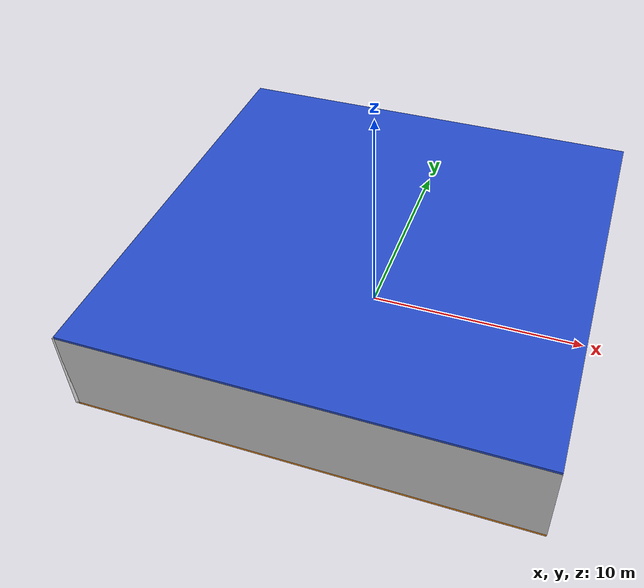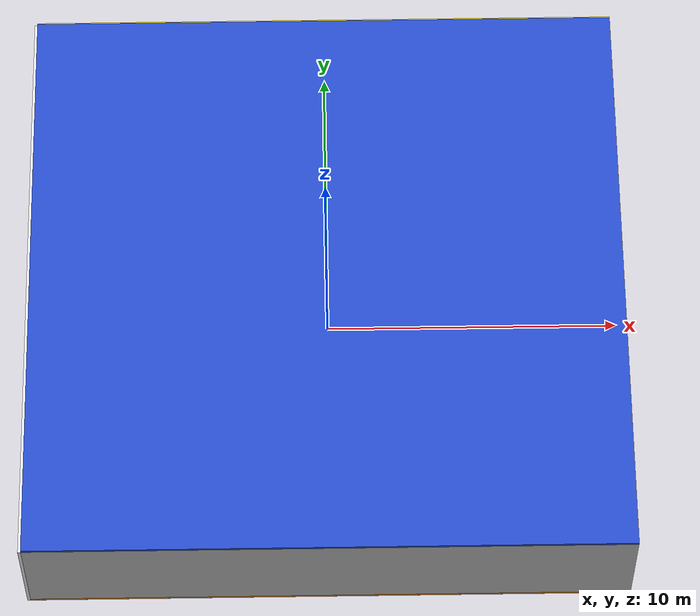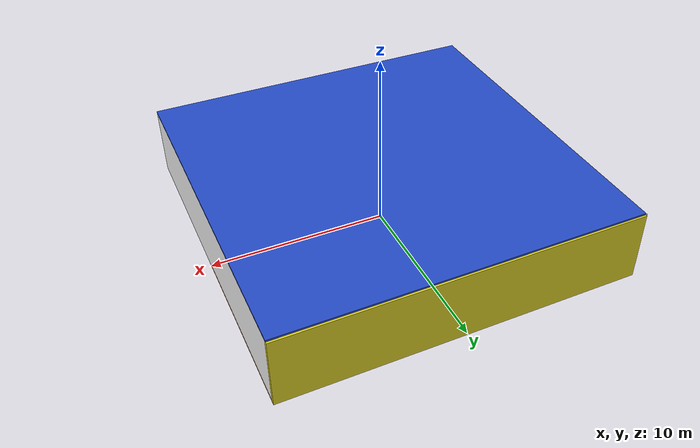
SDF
<sdf version="1.4">
 <world name="default">
  <physics type="ode">
   <max_step_size>0.001</max_step_size>
   <real_time_factor>1</real_time_factor>
   <real_time_update_rate>1000</real_time_update_rate>
   <gravity>0 0 -9.8</gravity>
  </physics>
  <scene><ambient>0.4 0.4 0.4 1</ambient><background>0.7 0.7 0.7 1</background><shadows>1</shadows></scene>
  <model name="Surrounding">
   <static>1</static>
   <link name="Ceiling">
    <collision name="Ceiling_Collision"><geometry><box><size>20 20 0.1</size></box></geometry></collision>
    <visual name="Ceiling_Visual">
     <geometry><box><size>20 20 0.1</size></box></geometry>
     <material>
      <script><uri>file://media/materials/scripts/gazebo.material</uri><name>Gazebo/BlueLaser</name></script>
     </material>
    </visual>
    <pose>0 0 4.05 0 0 0</pose>
   </link>
   <link name="Wall_South">
    <collision name="Wall_South_Collision">
     <geometry><box><size>20 0 4</size></box></geometry>
     <pose>0 0 2 0 -0 0</pose>
    </collision>
    <visual name="Wall_South_Visual">
     <pose>0 0 2 0 -0 0</pose>
     <geometry><box><size>20 0 4</size></box></geometry>
     <material>
      <script><uri>file://media/materials/scripts/gazebo.material</uri><name>Gazebo/CloudySky</name></script>
     </material>
    </visual>
    <velocity_decay><linear>0</linear><angular>0</angular></velocity_decay>
    <pose>0 -10 0 0 -0 0</pose>
   </link>
   <link name="Wall_East">
    <collision name="Wall_21_Collision">
     <geometry><box><size>20 0 4</size></box></geometry>
     <pose>0 0 2 0 -0 0</pose>
    </collision>
    <visual name="Wall_21_Visual">
     <pose>0 0 2 0 -0 0</pose>
     <geometry><box><size>20 0 4</size></box></geometry>
     <material>
      <script><uri>file://media/materials/scripts/gazebo.material</uri><name>Gazebo/WhiteGlow</name></script>
     </material>
    </visual>
    <velocity_decay><linear>0</linear><angular>0</angular></velocity_decay>
    <pose>10 0 0 0 -0 1.5708</pose>
   </link>
   <link name="Wall_North">
    <collision name="Wall_22_Collision">
     <geometry><box><size>20 0.2 4</size></box></geometry>
     <pose>0 0 2 0 -0 0</pose>
    </collision>
    <visual name="Wall_22_Visual">
     <pose>0 0 2 0 -0 0</pose>
     <geometry><box><size>20 0.2 4</size></box></geometry>
     <material>
      <script><uri>file://media/materials/scripts/gazebo.material</uri><name>Gazebo/YellowGlow</name></script>
     </material>
    </visual>
    <velocity_decay><linear>0</linear><angular>0</angular></velocity_decay>
    <pose>0 10 0 0 -0 0</pose>
   </link>
   <link name="Wall_West">
    <collision name="Wall_23_Collision">
     <geometry><box><size>20 0.2 4</size></box></geometry>
     <pose>0 0 2 0 -0 0</pose>
    </collision>
    <visual name="Wall_23_Visual">
     <pose>0 0 2 0 -0 0</pose>
     <geometry><box><size>20 0.2 4</size></box></geometry>
     <material>
      <script><uri>file://media/materials/scripts/gazebo.material</uri><name>Gazebo/White</name></script>
     </material>
    </visual>
    <velocity_decay><linear>0</linear><angular>0</angular></velocity_decay>
    <pose>-10 0 0 0 0 -1.5708</pose>
   </link>
   <link name="Ground_link">
    <collision name="collision">
     <pose>0 0 .05 0 -0 0</pose>
     <geometry><box><size>20 20 0.1</size></box></geometry>
    </collision>
    <visual name="visual">
     <pose>0 0 .05 0 -0 0</pose>
     <geometry><box><size>20 20 0.1</size></box></geometry>
     <material>
      <script><uri>file://media/materials/scripts/gazebo.material</uri><name>Gazebo/Orange</name></script>
     </material>
    </visual>
   </link>
   <static>1</static>
  </model>
  <spherical_coordinates>
   <surface_model>EARTH_WGS84</surface_model>
   <latitude_deg>0</latitude_deg>
   <longitude_deg>0</longitude_deg>
   <elevation>0</elevation>
   <heading_deg>0</heading_deg>
  </spherical_coordinates>
  <light name="lightball_0" type="diffuse">
   <diffuse>0.8 0.8 0.8 1</diffuse>
   <specular>0.2 0.2 0.2 1</specular>
   <attenuation>
    <range>100</range>
    <constant>0.7</constant>
    <linear>0.01</linear>
    <quadratic>0.001</quadratic>
   </attenuation>
   <direction>-0.5 0.1 -0.9</direction>
   <pose>8.60667973334 -9.83219964867 2.77513320229 0 0 0</pose>
  </light>
  <light name="lightball_1" type="diffuse">
   <diffuse>0.8 0.8 0.8 1</diffuse>
   <specular>0.2 0.2 0.2 1</specular>
   <attenuation>
    <range>100</range>
    <constant>0.7</constant>
    <linear>0.01</linear>
    <quadratic>0.001</quadratic>
   </attenuation>
   <direction>-0.5 0.1 -0.9</direction>
   <pose>-2.08843189645 -7.38575573721 2.81557936299 0 0 0</pose>
  </light>
  <light name="lightball_2" type="diffuse">
   <diffuse>0.8 0.8 0.8 1</diffuse>
   <specular>0.2 0.2 0.2 1</specular>
   <attenuation>
    <range>100</range>
    <constant>0.7</constant>
    <linear>0.01</linear>
    <quadratic>0.001</quadratic>
   </attenuation>
   <direction>-0.5 0.1 -0.9</direction>
   <pose>-1.62922063332 -3.61081405487 3.80223401323 0 0 0</pose>
  </light>
  <light name="lightball_3" type="diffuse">
   <diffuse>0.8 0.8 0.8 1</diffuse>
   <specular>0.2 0.2 0.2 1</specular>
   <attenuation>
    <range>100</range>
    <constant>0.7</constant>
    <linear>0.01</linear>
    <quadratic>0.001</quadratic>
   </attenuation>
   <direction>-0.5 0.1 -0.9</direction>
   <pose>9.0954192262 -5.06497938393 2.71323853691 0 0 0</pose>
  </light>
  <light name="lightball_4" type="diffuse">
   <diffuse>0.8 0.8 0.8 1</diffuse>
   <specular>0.2 0.2 0.2 1</specular>
   <attenuation>
    <range>100</range>
    <constant>0.7</constant>
    <linear>0.01</linear>
    <quadratic>0.001</quadratic>
   </attenuation>
   <direction>-0.5 0.1 -0.9</direction>
   <pose>-5.79991670019 -0.305157193909 1.86395599038 0 0 0</pose>
  </light>
  <light name="lightball_5" type="diffuse">
   <diffuse>0.8 0.8 0.8 1</diffuse>
   <specular>0.2 0.2 0.2 1</specular>
   <attenuation>
    <range>100</range>
    <constant>0.7</constant>
    <linear>0.01</linear>
    <quadratic>0.001</quadratic>
   </attenuation>
   <direction>-0.5 0.1 -0.9</direction>
   <pose>-5.61005367703 2.03977288946 3.84477987155 0 0 0</pose>
  </light>
  <light name="lightball_6" type="diffuse">
   <diffuse>0.8 0.8 0.8 1</diffuse>
   <specular>0.2 0.2 0.2 1</specular>
   <attenuation>
    <range>100</range>
    <constant>0.7</constant>
    <linear>0.01</linear>
    <quadratic>0.001</quadratic>
   </attenuation>
   <direction>-0.5 0.1 -0.9</direction>
   <pose>-4.4624932698 -7.48529273531 3.16530432977 0 0 0</pose>
  </light>
  <light name="lightball_7" type="diffuse">
   <diffuse>0.8 0.8 0.8 1</diffuse>
   <specular>0.2 0.2 0.2 1</specular>
   <attenuation>
    <range>100</range>
    <constant>0.7</constant>
    <linear>0.01</linear>
    <quadratic>0.001</quadratic>
   </attenuation>
   <direction>-0.5 0.1 -0.9</direction>
   <pose>9.12180580425 -5.87877199796 1.14976800703 0 0 0</pose>
  </light>
  <include>
   <uri>model://construction_cone</uri>
   <pose>0.613800233008 4.98563428509 0 0 0 1.34252270806</pose>
  </include>
  <include>
   <uri>model://construction_cone</uri>
   <pose>2.29577972973 6.79598235908 0 0 0 1.08339610387</pose>
  </include>
  <include>
   <uri>model://robocup_3Dsim_goal</uri>
   <pose>4.32817052321 -5.38407959106 0 0 0 0.0579715763045</pose>
  </include>
  <include>
   <uri>model://textured_shapes</uri>
   <pose>5.6675458514 4.0206535173 0 0 0 0.791046823718</pose>
  </include>
 </world>
</sdf>

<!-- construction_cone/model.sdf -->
<sdf version="1.5">
  <model name="Construction Cone">
    <link name="link">
      <collision name="collision">
        <geometry>
          <mesh>
            <scale>10 10 10</scale>
            <uri>file://isr-testbed/construction_cone/meshes/construction_cone.dae</uri>
          </mesh>
        </geometry>
      </collision>
      <visual name="visual">
        <geometry>
          <mesh>
            <scale>10 10 10</scale>
            <uri>file://isr-testbed/construction_cone/meshes/construction_cone.dae</uri>
          </mesh>
        </geometry>
      </visual>
    </link>
  </model>
</sdf>

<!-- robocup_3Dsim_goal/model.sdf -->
<sdf version="1.5">
  <model name="robocup_3d_goal">
    <static>true</static>
    <link name="left_post">
      <pose>0 1.05 0.45 0 0 0</pose>
      <collision name="collision">
        <geometry>
          <cylinder>
            <radius>0.05</radius>
            <length>0.9</length>
          </cylinder>
        </geometry>
      </collision>
      <visual name="visual">
        <geometry>
          <cylinder>
            <radius>0.05</radius>
            <length>0.9</length>
          </cylinder>
        </geometry>
        <material>
          <script>
            <uri>file://media/materials/scripts/gazebo.material</uri>
            <name>Gazebo/ZincYellow</name>
          </script>
        </material>
      </visual>
    </link>
    <link name="left_support_horiz_lower">
      <pose>0.30 1.05 0.01 0 0 0</pose>
      <collision name="collision">
        <geometry>
          <box>
            <size>0.50 0.02 0.02</size>
          </box>
        </geometry>
      </collision>
      <visual name="visual">
        <geometry>
          <box>
            <size>0.50 0.02 0.02</size>
          </box>
        </geometry>
        <material>
          <script>
            <uri>file://media/materials/scripts/gazebo.material</uri>
            <name>Gazebo/White</name>
          </script>
        </material>
      </visual>
    </link>
    <link name="left_support_horiz_upper">
      <pose>0.30 1.05 0.79 0 0 0</pose>
      <collision name="collision">
        <geometry>
          <box>
            <size>0.50 0.02 0.02</size>
          </box>
        </geometry>
      </collision>
      <visual name="visual">
        <geometry>
          <box>
            <size>0.50 0.02 0.02</size>
          </box>
        </geometry>
        <material>
          <script>
            <uri>file://media/materials/scripts/gazebo.material</uri>
            <name>Gazebo/White</name>
          </script>
        </material>
      </visual>
    </link>
    <link name="left_support_vertical">
      <pose>0.56 1.05 0.4 0 1.5708 0</pose>
      <collision name="collision">
        <geometry>
          <box>
            <size>0.80 0.02 0.02</size>
          </box>
        </geometry>
      </collision>
      <visual name="visual">
        <geometry>
          <box>
            <size>0.80 0.02 0.02</size>
          </box>
        </geometry>
        <material>
          <script>
            <uri>file://media/materials/scripts/gazebo.material</uri>
            <name>Gazebo/White</name>
          </script>
        </material>
      </visual>
    </link>
    <link name="right_support_horiz_lower">
      <pose>0.30 -1.05 0.01 0 0 0</pose>
      <collision name="collision">
        <geometry>
          <box>
            <size>0.50 0.02 0.02</size>
          </box>
        </geometry>
      </collision>
      <visual name="visual">
        <geometry>
          <box>
            <size>0.50 0.02 0.02</size>
          </box>
        </geometry>
        <material>
          <script>
            <uri>file://media/materials/scripts/gazebo.material</uri>
            <name>Gazebo/White</name>
          </script>
        </material>
      </visual>
    </link>
    <link name="right_support_horiz_upper">
      <pose>0.30 -1.05 0.79 0 0 0</pose>
      <collision name="collision">
        <geometry>
          <box>
            <size>0.50 0.02 0.02</size>
          </box>
        </geometry>
      </collision>
      <visual name="visual">
        <geometry>
          <box>
            <size>0.50 0.02 0.02</size>
          </box>
        </geometry>
        <material>
          <script>
            <uri>file://media/materials/scripts/gazebo.material</uri>
            <name>Gazebo/White</name>
          </script>
        </material>
      </visual>
    </link>
    <link name="right_support_vertical">
      <pose>0.56 -1.05 0.4 0 1.5708 0</pose>
      <collision name="collision">
        <geometry>
          <box>
            <size>0.80 0.02 0.02</size>
          </box>
        </geometry>
      </collision>
      <visual name="visual">
        <geometry>
          <box>
            <size>0.80 0.02 0.02</size>
          </box>
        </geometry>
        <material>
          <script>
            <uri>file://media/materials/scripts/gazebo.material</uri>
            <name>Gazebo/White</name>
          </script>
        </material>
      </visual>
    </link>
    <link name="center_support_horiz_lower">
      <pose>0.56 0 0.01 0 1.5708 0</pose>
      <collision name="collision">
        <geometry>
          <box>
            <size>0.02 2.08 0.02</size>
          </box>
        </geometry>
      </collision>
      <visual name="visual">
        <geometry>
          <box>
            <size>0.02 2.08 0.02</size>
          </box>
        </geometry>
        <material>
          <script>
            <uri>file://media/materials/scripts/gazebo.material</uri>
            <name>Gazebo/White</name>
          </script>
        </material>
      </visual>
    </link>
    <link name="center_support_horiz_upper">
      <pose>0.56 0 0.79 0 1.5708 0</pose>
      <collision name="collision">
        <geometry>
          <box>
            <size>0.02 2.08 0.02</size>
          </box>
        </geometry>
      </collision>
      <visual name="visual">
        <geometry>
          <box>
            <size>0.02 2.08 0.02</size>
          </box>
        </geometry>
        <material>
          <script>
            <uri>file://media/materials/scripts/gazebo.material</uri>
            <name>Gazebo/White</name>
          </script>
        </material>
      </visual>
    </link>
    <link name="right_post">
      <pose>0 -1.05 0.45 0 0 0</pose>
      <collision name="collision">
        <geometry>
          <cylinder>
            <radius>0.05</radius>
            <length>0.9</length>
          </cylinder>
        </geometry>
      </collision>
      <visual name="visual">
        <geometry>
          <cylinder>
            <radius>0.05</radius>
            <length>0.9</length>
          </cylinder>
        </geometry>
        <material>
          <script>
            <uri>file://media/materials/scripts/gazebo.material</uri>
            <name>Gazebo/ZincYellow</name>
          </script>
        </material>
      </visual>
    </link>
    <link name="crossbar">
      <pose>0 0 0.85 1.57 1.57 0</pose>
      <collision name="collision">
        <geometry>
          <cylinder>
            <radius>0.05</radius>
            <length>2.0</length>
          </cylinder>
        </geometry>
      </collision>
      <visual name="visual">
        <geometry>
          <cylinder>
            <radius>0.05</radius>
            <length>2.0</length>
          </cylinder>
        </geometry>
        <material>
          <script>
            <uri>file://media/materials/scripts/gazebo.material</uri>
            <name>Gazebo/ZincYellow</name>
          </script>
        </material>
      </visual>
    </link>
    <link name="center_net">
      <pose>0.56 0 0.40 0 0 0</pose>
      <collision name="collision">
        <geometry>
          <box>
            <size>0.01 2.1 0.80</size>
          </box>
        </geometry>
      </collision>
      <visual name="visual">
        <geometry>
          <box>
            <size>0.01 2.1 0.80</size>
          </box>
        </geometry>
        <material>
          <script>
            <uri>model://../model_source/models/robocup09_spl_field/materials/scripts/</uri>
            <uri>model://../model_source/models/robocup09_spl_field/materials/textures/</uri>
            <name>RoboCup/Net</name>
          </script>
        </material>
      </visual>
    </link>
    <link name="left_net">
      <pose>0.30 1.05 0.40 0 0 0</pose>
      <collision name="collision">
        <geometry>
          <box>
            <size>0.50 0.01 0.76</size>
          </box>
        </geometry>
      </collision>
      <visual name="visual">
        <geometry>
          <box>
            <size>0.50 0.01 0.76</size>
          </box>
        </geometry>
        <material>
          <script>
            <uri>model://../model_source/models/robocup09_spl_field/materials/scripts/</uri>
            <uri>model://../model_source/models/robocup09_spl_field/materials/textures/</uri>
            <name>RoboCup/Net</name>
          </script>
        </material>
      </visual>
    </link>
    <link name="right_net">
      <pose>0.30 -1.05 0.40 0 0 0</pose>
      <collision name="collision">
        <geometry>
          <box>
            <size>0.50 0.01 0.76</size>
          </box>
        </geometry>
      </collision>
      <visual name="visual">
        <geometry>
          <box>
            <size>0.50 0.01 0.76</size>
          </box>
        </geometry>
        <material>
          <script>
            <uri>model://../model_source/models/robocup09_spl_field/materials/scripts/</uri>
            <uri>model://../model_source/models/robocup09_spl_field/materials/textures/</uri>
            <name>RoboCup/Net</name>
          </script>
        </material>
      </visual>
    </link>
  </model>
</sdf>

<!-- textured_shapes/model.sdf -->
<sdf version="1.6">
  <model name="textured_shapes">
    <pose>0 0 0.5 0 0 0</pose>
    <link name="box">
      <pose>0 -1.5 0 0 0 0</pose>
      <collision name="collision">
        <geometry>
          <box>
            <size>1 1 1</size>
          </box>
        </geometry>
      </collision>
      <visual name="visual">
        <geometry>
          <box>
            <size>1 1 1</size>
          </box>
        </geometry>
        <material>
          <script>
            <uri>model://../model_source/models/textured_shapes/materials/scripts</uri>
            <uri>model://../model_source/models/textured_shapes/materials/textures</uri>
            <name>TexturedShape/Squares</name>
          </script>
        </material>
      </visual>
    </link>
    <link name="sphere">
      <collision name="collision">
        <geometry>
          <sphere>
            <radius>0.5</radius>
          </sphere>
        </geometry>
      </collision>
      <visual name="visual">
        <geometry>
          <sphere>
            <radius>0.5</radius>
          </sphere>
        </geometry>
        <material>
          <script>
            <uri>model://../model_source/models/textured_shapes/materials/scripts</uri>
            <uri>model://../model_source/models/textured_shapes/materials/textures</uri>
            <name>TexturedShape/Squares</name>
          </script>
        </material>
      </visual>
    </link>
    <link name="cylinder">
      <pose>0 1.5 0 0 0 0</pose>
      <collision name="collision">
        <geometry>
          <cylinder>
            <radius>0.5</radius>
            <length>1</length>
          </cylinder>
        </geometry>
      </collision>
      <visual name="visual">
        <geometry>
          <cylinder>
            <radius>0.5</radius>
            <length>1</length>
          </cylinder>
        </geometry>
        <material>
          <script>
            <uri>model://../model_source/models/textured_shapes/materials/scripts</uri>
            <uri>model://../model_source/models/textured_shapes/materials/textures</uri>
            <name>TexturedShape/Squares</name>
          </script>
        </material>
      </visual>
    </link>
  </model>
</sdf>
